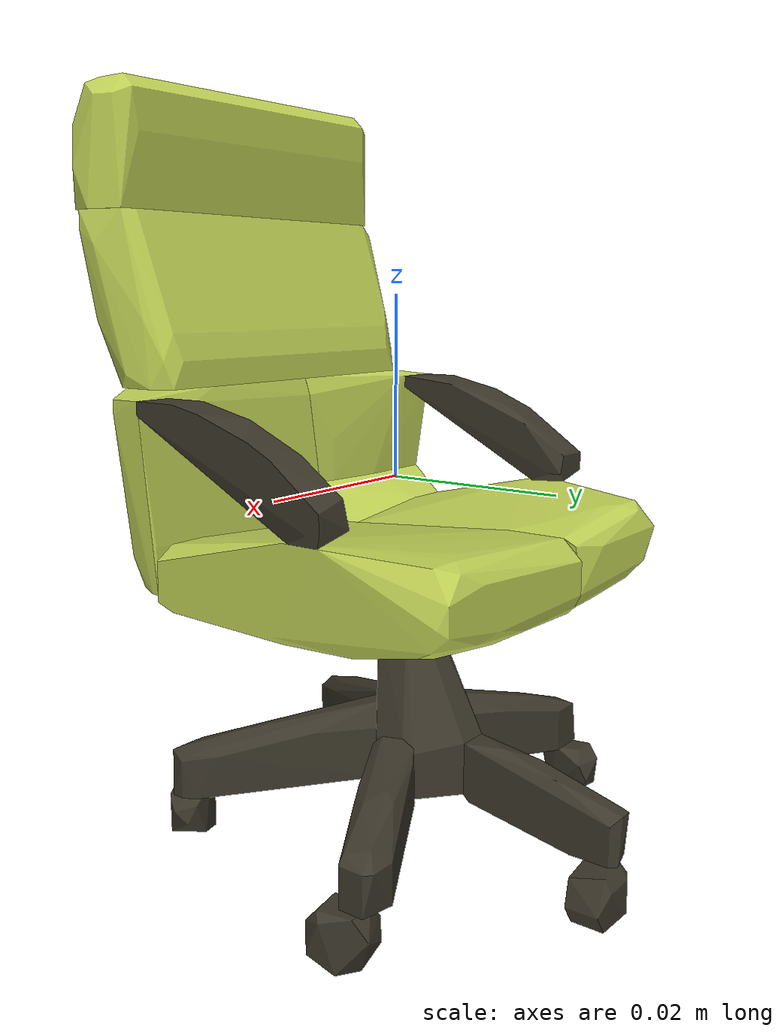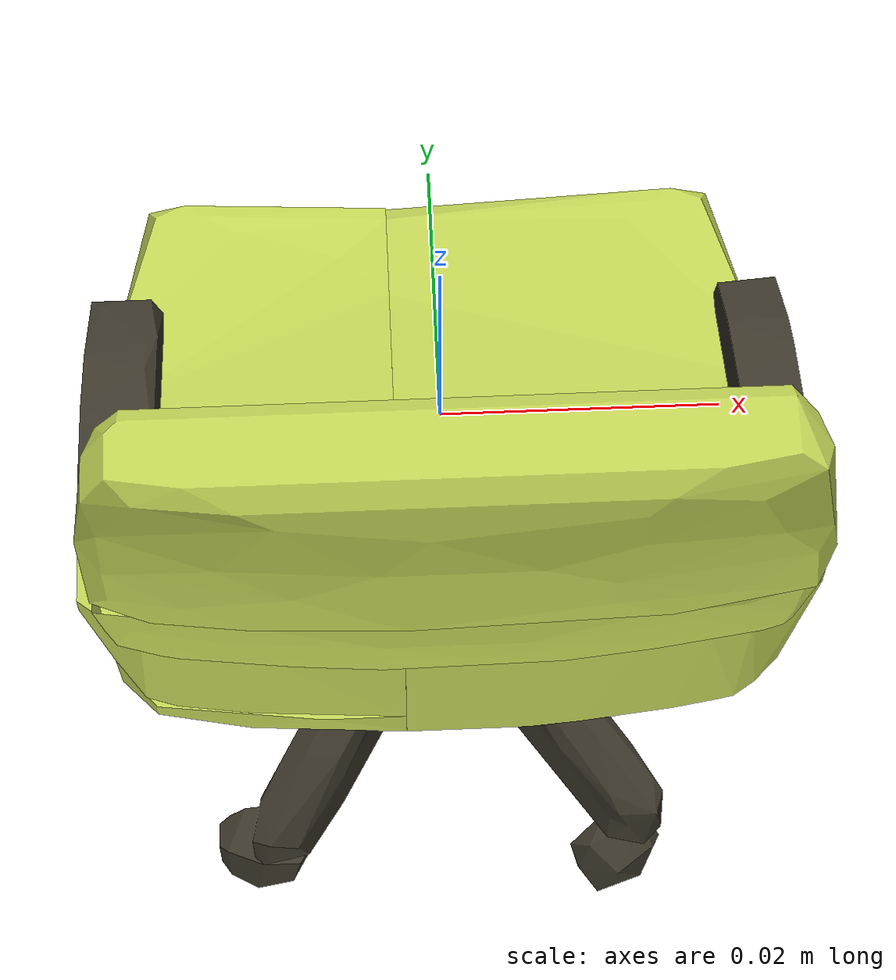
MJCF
<mujoco model="shapenetsem5">
  <asset>
    <mesh file="meshes/shapenetsem5/shapenetsem5_0.stl" name="shapenetsem5_0" scale="1.3 1.3 1.3"/>
    <mesh file="meshes/shapenetsem5/shapenetsem5_1.stl" name="shapenetsem5_1" scale="1.3 1.3 1.3"/>
    <mesh file="meshes/shapenetsem5/shapenetsem5_2.stl" name="shapenetsem5_2" scale="1.3 1.3 1.3"/>
    <mesh file="meshes/shapenetsem5/shapenetsem5_3.stl" name="shapenetsem5_3" scale="1.3 1.3 1.3"/>
    <mesh file="meshes/shapenetsem5/shapenetsem5_4.stl" name="shapenetsem5_4" scale="1.3 1.3 1.3"/>
    <mesh file="meshes/shapenetsem5/shapenetsem5_5.stl" name="shapenetsem5_5" scale="1.3 1.3 1.3"/>
    <mesh file="meshes/shapenetsem5/shapenetsem5_6.stl" name="shapenetsem5_6" scale="1.3 1.3 1.3"/>
    <mesh file="meshes/shapenetsem5/shapenetsem5_7.stl" name="shapenetsem5_7" scale="1.3 1.3 1.3"/>
    <mesh file="meshes/shapenetsem5/shapenetsem5_8.stl" name="shapenetsem5_8" scale="1.3 1.3 1.3"/>
    <mesh file="meshes/shapenetsem5/shapenetsem5_9.stl" name="shapenetsem5_9" scale="1.3 1.3 1.3"/>
    <mesh file="meshes/shapenetsem5/shapenetsem5_10.stl" name="shapenetsem5_10" scale="1.3 1.3 1.3"/>
    <mesh file="meshes/shapenetsem5/shapenetsem5_11.stl" name="shapenetsem5_11" scale="1.3 1.3 1.3"/>
    <mesh file="meshes/shapenetsem5/shapenetsem5_12.stl" name="shapenetsem5_12" scale="1.3 1.3 1.3"/>
    <mesh file="meshes/shapenetsem5/shapenetsem5_13.stl" name="shapenetsem5_13" scale="1.3 1.3 1.3"/>
    <mesh file="meshes/shapenetsem5/shapenetsem5_14.stl" name="shapenetsem5_14" scale="1.3 1.3 1.3"/>
    <mesh file="meshes/shapenetsem5/shapenetsem5_15.stl" name="shapenetsem5_15" scale="1.3 1.3 1.3"/>
    <mesh file="meshes/shapenetsem5/shapenetsem5_16.stl" name="shapenetsem5_16" scale="1.3 1.3 1.3"/>
    <mesh file="meshes/shapenetsem5/shapenetsem5_17.stl" name="shapenetsem5_17" scale="1.3 1.3 1.3"/>
    <mesh file="meshes/shapenetsem5/shapenetsem5_18.stl" name="shapenetsem5_18" scale="1.3 1.3 1.3"/>
    <mesh file="meshes/shapenetsem5/shapenetsem5_19.stl" name="shapenetsem5_19" scale="1.3 1.3 1.3"/>
  </asset>
  <worldbody>
    <body>
      <body name="collision">
        <geom pos="0 0 0" mesh="shapenetsem5_0" type="mesh" solimp="0.998 0.998 0.001" solref="0.001 1" density="100" friction="0.95 0.3 0.1" rgba="0.24 0.22 0.17 1" group="1" condim="4"/>
        <geom pos="0 0 0" mesh="shapenetsem5_1" type="mesh" solimp="0.998 0.998 0.001" solref="0.001 1" density="100" friction="0.95 0.3 0.1" rgba="0.24 0.22 0.17 1" group="1" condim="4"/>
        <geom pos="0 0 0" mesh="shapenetsem5_2" type="mesh" solimp="0.998 0.998 0.001" solref="0.001 1" density="100" friction="0.95 0.3 0.1" rgba="0.24 0.22 0.17 1" group="1" condim="4"/>
        <geom pos="0 0 0" mesh="shapenetsem5_3" type="mesh" solimp="0.998 0.998 0.001" solref="0.001 1" density="100" friction="0.95 0.3 0.1" rgba="0.24 0.22 0.17 1" group="1" condim="4"/>
        <geom pos="0 0 0" mesh="shapenetsem5_4" type="mesh" solimp="0.998 0.998 0.001" solref="0.001 1" density="100" friction="0.95 0.3 0.1" rgba="0.77 0.84 0.34 1" group="1" condim="4"/>
        <geom pos="0 0 0" mesh="shapenetsem5_5" type="mesh" solimp="0.998 0.998 0.001" solref="0.001 1" density="100" friction="0.95 0.3 0.1" rgba="0.77 0.84 0.34 1" group="1" condim="4"/>
        <geom pos="0 0 0" mesh="shapenetsem5_6" type="mesh" solimp="0.998 0.998 0.001" solref="0.001 1" density="100" friction="0.95 0.3 0.1" rgba="0.77 0.84 0.34 1" group="1" condim="4"/>
        <geom pos="0 0 0" mesh="shapenetsem5_7" type="mesh" solimp="0.998 0.998 0.001" solref="0.001 1" density="100" friction="0.95 0.3 0.1" rgba="0.77 0.84 0.34 1" group="1" condim="4"/>
        <geom pos="0 0 0" mesh="shapenetsem5_8" type="mesh" solimp="0.998 0.998 0.001" solref="0.001 1" density="100" friction="0.95 0.3 0.1" rgba="0.77 0.84 0.34 1" group="1" condim="4"/>
        <geom pos="0 0 0" mesh="shapenetsem5_9" type="mesh" solimp="0.998 0.998 0.001" solref="0.001 1" density="100" friction="0.95 0.3 0.1" rgba="0.24 0.22 0.17 1" group="1" condim="4"/>
        <geom pos="0 0 0" mesh="shapenetsem5_10" type="mesh" solimp="0.998 0.998 0.001" solref="0.001 1" density="100" friction="0.95 0.3 0.1" rgba="0.24 0.22 0.17 1" group="1" condim="4"/>
        <geom pos="0 0 0" mesh="shapenetsem5_11" type="mesh" solimp="0.998 0.998 0.001" solref="0.001 1" density="100" friction="0.95 0.3 0.1" rgba="0.24 0.22 0.17 1" group="1" condim="4"/>
        <geom pos="0 0 0" mesh="shapenetsem5_12" type="mesh" solimp="0.998 0.998 0.001" solref="0.001 1" density="100" friction="0.95 0.3 0.1" rgba="0.24 0.22 0.17 1" group="1" condim="4"/>
        <geom pos="0 0 0" mesh="shapenetsem5_13" type="mesh" solimp="0.998 0.998 0.001" solref="0.001 1" density="100" friction="0.95 0.3 0.1" rgba="0.24 0.22 0.17 1" group="1" condim="4"/>
        <geom pos="0 0 0" mesh="shapenetsem5_14" type="mesh" solimp="0.998 0.998 0.001" solref="0.001 1" density="100" friction="0.95 0.3 0.1" rgba="0.24 0.22 0.17 1" group="1" condim="4"/>
        <geom pos="0 0 0" mesh="shapenetsem5_15" type="mesh" solimp="0.998 0.998 0.001" solref="0.001 1" density="100" friction="0.95 0.3 0.1" rgba="0.24 0.22 0.17 1" group="1" condim="4"/>
        <geom pos="0 0 0" mesh="shapenetsem5_16" type="mesh" solimp="0.998 0.998 0.001" solref="0.001 1" density="100" friction="0.95 0.3 0.1" rgba="0.24 0.22 0.17 1" group="1" condim="4"/>
        <geom pos="0 0 0" mesh="shapenetsem5_17" type="mesh" solimp="0.998 0.998 0.001" solref="0.001 1" density="100" friction="0.95 0.3 0.1" rgba="0.24 0.22 0.17 1" group="1" condim="4"/>
        <geom pos="0 0 0" mesh="shapenetsem5_18" type="mesh" solimp="0.998 0.998 0.001" solref="0.001 1" density="100" friction="0.95 0.3 0.1" rgba="0.77 0.84 0.34 1" group="1" condim="4"/>
        <geom pos="0 0 0" mesh="shapenetsem5_19" type="mesh" solimp="0.998 0.998 0.001" solref="0.001 1" density="100" friction="0.95 0.3 0.1" rgba="0.77 0.84 0.34 1" group="1" condim="4"/>
      </body>
      <body name="visual">
        <geom pos="0 0 0" mesh="shapenetsem5_0" type="mesh" rgba="0.77 0.84 0.34 1" conaffinity="0" contype="0" group="0" mass="0.0001"/>
        <geom pos="0 0 0" mesh="shapenetsem5_1" type="mesh" rgba="0.77 0.84 0.34 1" conaffinity="0" contype="0" group="0" mass="0.0001"/>
        <geom pos="0 0 0" mesh="shapenetsem5_2" type="mesh" rgba="0.77 0.84 0.34 1" conaffinity="0" contype="0" group="0" mass="0.0001"/>
        <geom pos="0 0 0" mesh="shapenetsem5_3" type="mesh" rgba="0.77 0.84 0.34 1" conaffinity="0" contype="0" group="0" mass="0.0001"/>
        <geom pos="0 0 0" mesh="shapenetsem5_4" type="mesh" rgba="0.77 0.84 0.34 1" conaffinity="0" contype="0" group="0" mass="0.0001"/>
        <geom pos="0 0 0" mesh="shapenetsem5_5" type="mesh" rgba="0.77 0.84 0.34 1" conaffinity="0" contype="0" group="0" mass="0.0001"/>
        <geom pos="0 0 0" mesh="shapenetsem5_6" type="mesh" rgba="0.77 0.84 0.34 1" conaffinity="0" contype="0" group="0" mass="0.0001"/>
        <geom pos="0 0 0" mesh="shapenetsem5_7" type="mesh" rgba="0.77 0.84 0.34 1" conaffinity="0" contype="0" group="0" mass="0.0001"/>
        <geom pos="0 0 0" mesh="shapenetsem5_8" type="mesh" rgba="0.77 0.84 0.34 1" conaffinity="0" contype="0" group="0" mass="0.0001"/>
        <geom pos="0 0 0" mesh="shapenetsem5_9" type="mesh" rgba="0.77 0.84 0.34 1" conaffinity="0" contype="0" group="0" mass="0.0001"/>
        <geom pos="0 0 0" mesh="shapenetsem5_10" type="mesh" rgba="0.77 0.84 0.34 1" conaffinity="0" contype="0" group="0" mass="0.0001"/>
        <geom pos="0 0 0" mesh="shapenetsem5_11" type="mesh" rgba="0.77 0.84 0.34 1" conaffinity="0" contype="0" group="0" mass="0.0001"/>
        <geom pos="0 0 0" mesh="shapenetsem5_12" type="mesh" rgba="0.77 0.84 0.34 1" conaffinity="0" contype="0" group="0" mass="0.0001"/>
        <geom pos="0 0 0" mesh="shapenetsem5_13" type="mesh" rgba="0.77 0.84 0.34 1" conaffinity="0" contype="0" group="0" mass="0.0001"/>
        <geom pos="0 0 0" mesh="shapenetsem5_14" type="mesh" rgba="0.77 0.84 0.34 1" conaffinity="0" contype="0" group="0" mass="0.0001"/>
        <geom pos="0 0 0" mesh="shapenetsem5_15" type="mesh" rgba="0.77 0.84 0.34 1" conaffinity="0" contype="0" group="0" mass="0.0001"/>
        <geom pos="0 0 0" mesh="shapenetsem5_16" type="mesh" rgba="0.77 0.84 0.34 1" conaffinity="0" contype="0" group="0" mass="0.0001"/>
        <geom pos="0 0 0" mesh="shapenetsem5_17" type="mesh" rgba="0.77 0.84 0.34 1" conaffinity="0" contype="0" group="0" mass="0.0001"/>
        <geom pos="0 0 0" mesh="shapenetsem5_18" type="mesh" rgba="0.77 0.84 0.34 1" conaffinity="0" contype="0" group="0" mass="0.0001"/>
        <geom pos="0 0 0" mesh="shapenetsem5_19" type="mesh" rgba="0.77 0.84 0.34 1" conaffinity="0" contype="0" group="0" mass="0.0001"/>
      </body>
      <site rgba="0 0 0 0" size="0.005" pos="0 0 -0.06" name="bottom_site"/>
      <site rgba="0 0 0 0" size="0.005" pos="0 0 0.04" name="top_site"/>
      <site rgba="0 0 0 0" size="0.005" pos="0.025 0.025 0" name="horizontal_radius_site"/>
    </body>
  </worldbody>
</mujoco>
